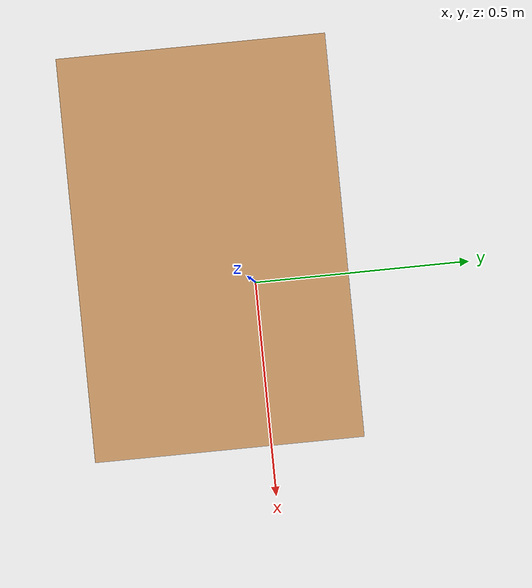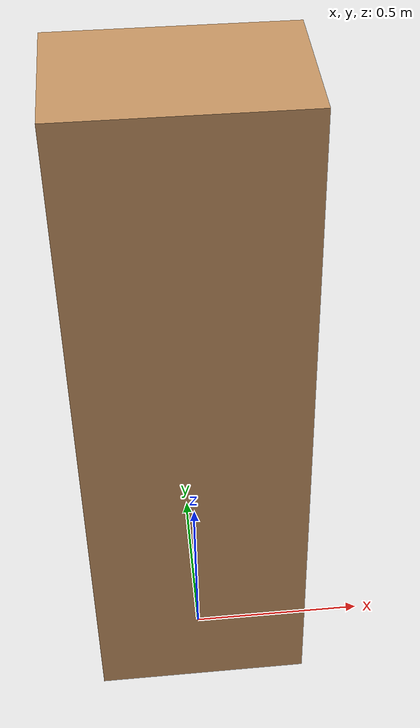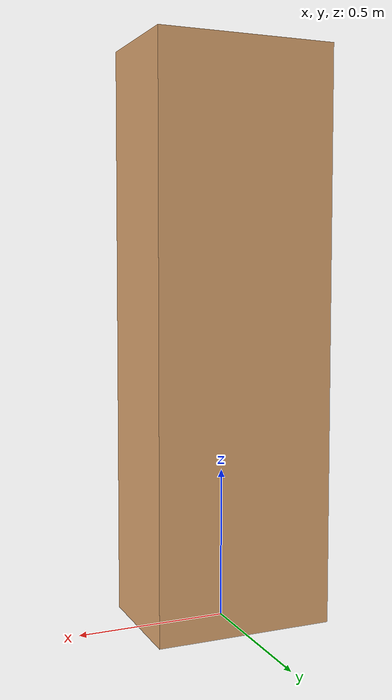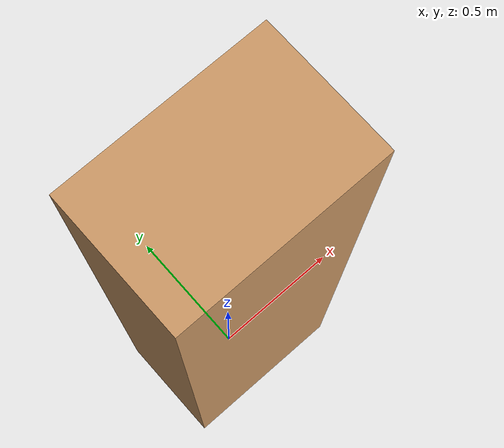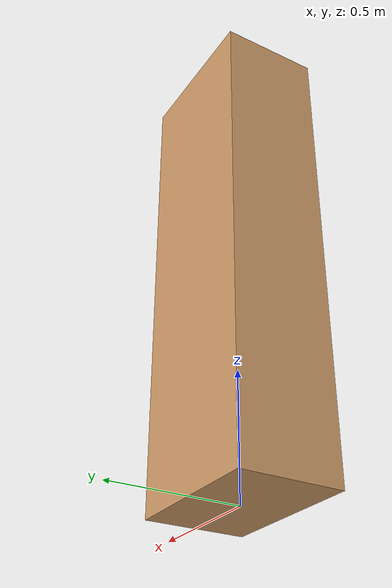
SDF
<?xml version="1.0" ?>
<sdf version="1.5">
  <model name="person_standing_underwater">
    <static>true</static>
    <link name="link">
      <inertial>
        <pose>0 0 0.95 0 0 0</pose>
        <mass>70.0</mass>
        <inertia>
          <ixx>24.88</ixx>
          <ixy>0</ixy>
          <ixz>0</ixz>
          <iyy>25.73</iyy>
          <iyz>0</iyz>
          <izz>2.48</izz>
        </inertia>
      </inertial>

      <collision name="person_collision">
        <pose>0 0 0.95 0 0 0</pose>
        <geometry>
          <box>
            <size>0.6 0.4 1.9</size>
          </box>
        </geometry>
      </collision>

      <visual name="visual">
        <pose>0 0 0.95 0 0 0</pose>
        <geometry>
          <box>
            <size>0.6 0.4 1.9</size>
          </box>
        </geometry>
        <material>
          <ambient>0.8 0.6 0.4 1</ambient>
          <diffuse>0.8 0.6 0.4 1</diffuse>
          <specular>0.1 0.1 0.1 1</specular>
        </material>
      </visual>
    </link>
  </model>
</sdf>
